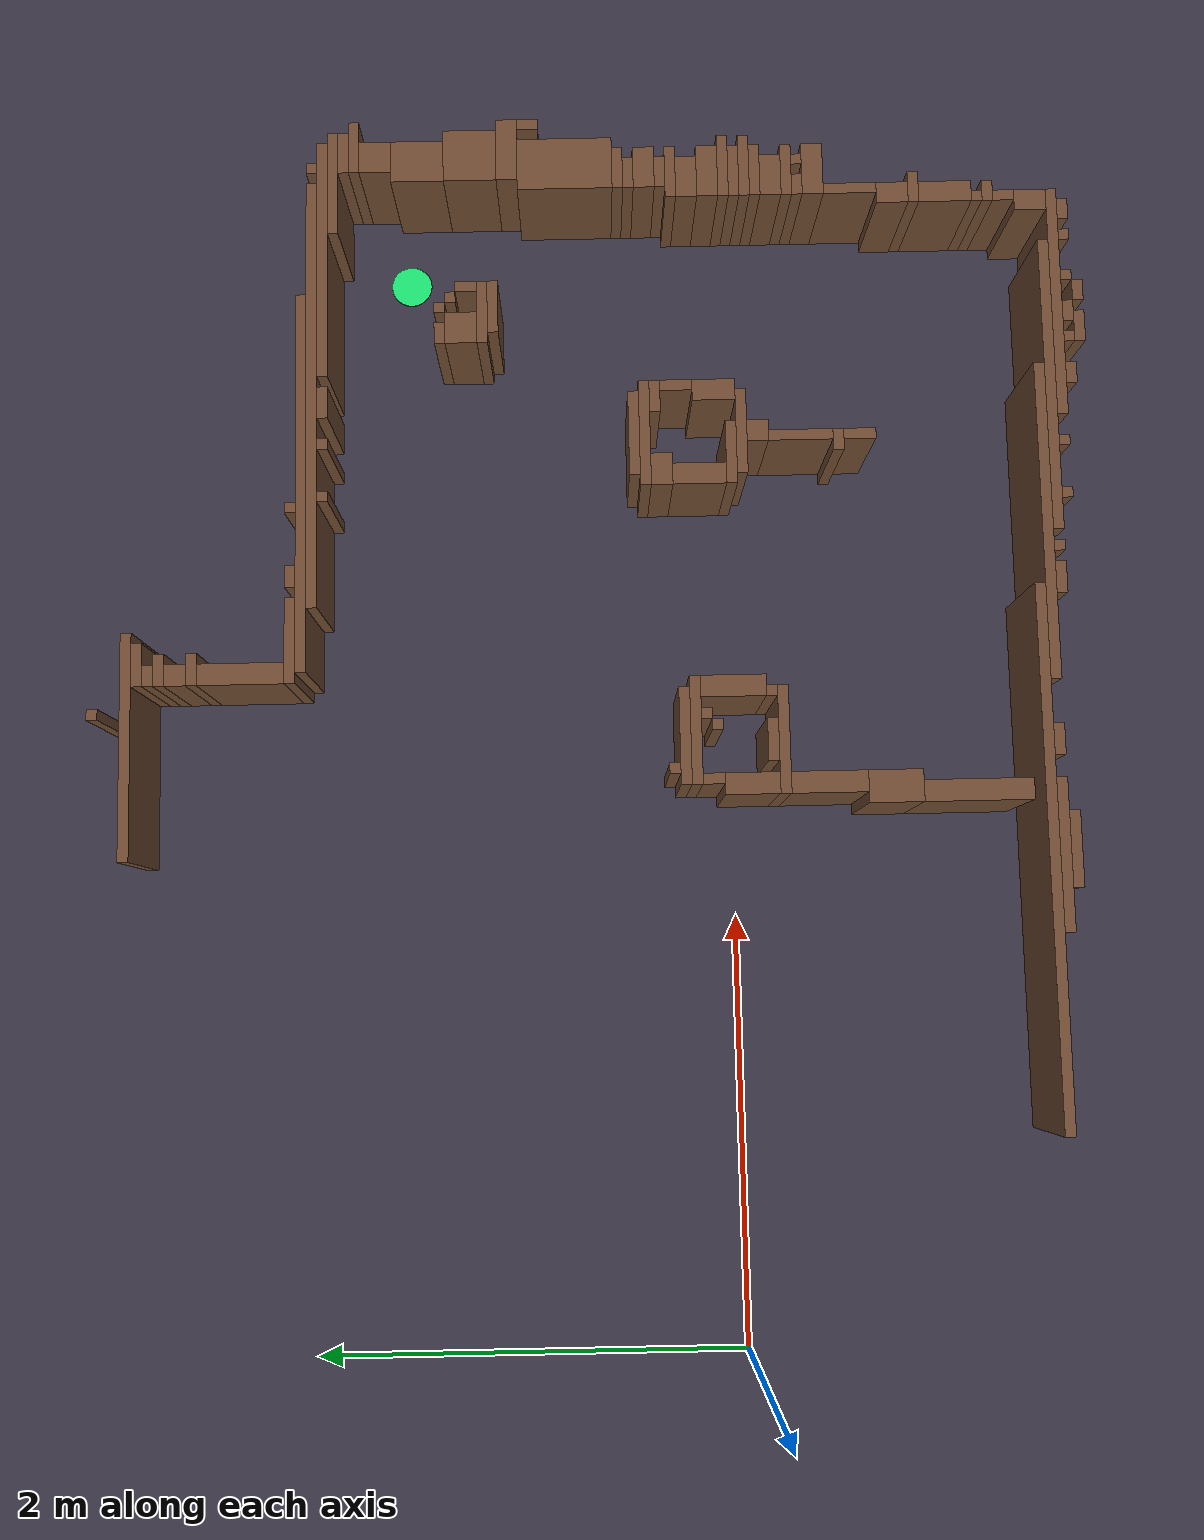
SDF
<sdf version="1.8">
 <world name="holloween">
  <model name="ground_plane">
   <static>true</static>
   <link name="link">
    <collision name="collision">
     <geometry><plane><normal>0 0 1</normal><size>100 100</size></plane></geometry>
    </collision>
    <visual name="visual">
     <geometry><plane><normal>0 0 1</normal><size>100 100</size></plane></geometry>
     <material><ambient>0.22 0.2 0.26 1</ambient><diffuse>0.22 0.2 0.26 1</diffuse></material>
    </visual>
   </link>
  </model>
  <model name="wall_5">
   <static>true</static>
   <pose>2.953 2.949 0.300 0 0 0</pose>
   <link name="l">
    <collision name="c"><geometry><box><size>0.050 0.050 0.600</size></box></geometry></collision>
    <visual name="v">
     <geometry><box><size>0.050 0.050 0.600</size></box></geometry>
     <material><ambient>0.45 0.3 0.2 1</ambient><diffuse>0.45 0.3 0.2 1</diffuse></material>
    </visual>
   </link>
  </model>
  <model name="wall_17">
   <static>true</static>
   <pose>2.803 2.799 0.300 0 0 0</pose>
   <link name="l">
    <collision name="c"><geometry><box><size>1.050 0.050 0.600</size></box></geometry></collision>
    <visual name="v">
     <geometry><box><size>1.050 0.050 0.600</size></box></geometry>
     <material><ambient>0.45 0.3 0.2 1</ambient><diffuse>0.45 0.3 0.2 1</diffuse></material>
    </visual>
   </link>
  </model>
  <model name="wall_18">
   <static>true</static>
   <pose>3.178 2.749 0.300 0 0 0</pose>
   <link name="l">
    <collision name="c"><geometry><box><size>0.200 0.050 0.600</size></box></geometry></collision>
    <visual name="v">
     <geometry><box><size>0.200 0.050 0.600</size></box></geometry>
     <material><ambient>0.45 0.3 0.2 1</ambient><diffuse>0.45 0.3 0.2 1</diffuse></material>
    </visual>
   </link>
  </model>
  <model name="wall_19">
   <static>true</static>
   <pose>3.128 2.699 0.300 0 0 0</pose>
   <link name="l">
    <collision name="c"><geometry><box><size>0.100 0.050 0.600</size></box></geometry></collision>
    <visual name="v">
     <geometry><box><size>0.100 0.050 0.600</size></box></geometry>
     <material><ambient>0.45 0.3 0.2 1</ambient><diffuse>0.45 0.3 0.2 1</diffuse></material>
    </visual>
   </link>
  </model>
  <model name="wall_20">
   <static>true</static>
   <pose>3.153 2.649 0.300 0 0 0</pose>
   <link name="l">
    <collision name="c"><geometry><box><size>0.150 0.050 0.600</size></box></geometry></collision>
    <visual name="v">
     <geometry><box><size>0.150 0.050 0.600</size></box></geometry>
     <material><ambient>0.45 0.3 0.2 1</ambient><diffuse>0.45 0.3 0.2 1</diffuse></material>
    </visual>
   </link>
  </model>
  <model name="wall_21">
   <static>true</static>
   <pose>3.128 2.574 0.300 0 0 0</pose>
   <link name="l">
    <collision name="c"><geometry><box><size>0.100 0.100 0.600</size></box></geometry></collision>
    <visual name="v">
     <geometry><box><size>0.100 0.100 0.600</size></box></geometry>
     <material><ambient>0.45 0.3 0.2 1</ambient><diffuse>0.45 0.3 0.2 1</diffuse></material>
    </visual>
   </link>
  </model>
  <model name="wall_22">
   <static>true</static>
   <pose>3.153 2.499 0.300 0 0 0</pose>
   <link name="l">
    <collision name="c"><geometry><box><size>0.150 0.050 0.600</size></box></geometry></collision>
    <visual name="v">
     <geometry><box><size>0.150 0.050 0.600</size></box></geometry>
     <material><ambient>0.45 0.3 0.2 1</ambient><diffuse>0.45 0.3 0.2 1</diffuse></material>
    </visual>
   </link>
  </model>
  <model name="wall_26">
   <static>true</static>
   <pose>3.128 2.274 0.300 0 0 0</pose>
   <link name="l">
    <collision name="c"><geometry><box><size>0.100 0.400 0.600</size></box></geometry></collision>
    <visual name="v">
     <geometry><box><size>0.100 0.400 0.600</size></box></geometry>
     <material><ambient>0.45 0.3 0.2 1</ambient><diffuse>0.45 0.3 0.2 1</diffuse></material>
    </visual>
   </link>
  </model>
  <model name="wall_28">
   <static>true</static>
   <pose>3.278 2.049 0.300 0 0 0</pose>
   <link name="l">
    <collision name="c"><geometry><box><size>0.400 0.050 0.600</size></box></geometry></collision>
    <visual name="v">
     <geometry><box><size>0.400 0.050 0.600</size></box></geometry>
     <material><ambient>0.45 0.3 0.2 1</ambient><diffuse>0.45 0.3 0.2 1</diffuse></material>
    </visual>
   </link>
  </model>
  <model name="wall_30">
   <static>true</static>
   <pose>3.578 2.049 0.300 0 0 0</pose>
   <link name="l">
    <collision name="c"><geometry><box><size>0.100 0.050 0.600</size></box></geometry></collision>
    <visual name="v">
     <geometry><box><size>0.100 0.050 0.600</size></box></geometry>
     <material><ambient>0.45 0.3 0.2 1</ambient><diffuse>0.45 0.3 0.2 1</diffuse></material>
    </visual>
   </link>
  </model>
  <model name="wall_31">
   <static>true</static>
   <pose>3.903 2.049 0.300 0 0 0</pose>
   <link name="l">
    <collision name="c"><geometry><box><size>0.050 0.050 0.600</size></box></geometry></collision>
    <visual name="v">
     <geometry><box><size>0.050 0.050 0.600</size></box></geometry>
     <material><ambient>0.45 0.3 0.2 1</ambient><diffuse>0.45 0.3 0.2 1</diffuse></material>
    </visual>
   </link>
  </model>
  <model name="wall_35">
   <static>true</static>
   <pose>4.028 1.999 0.300 0 0 0</pose>
   <link name="l">
    <collision name="c"><geometry><box><size>1.800 0.050 0.600</size></box></geometry></collision>
    <visual name="v">
     <geometry><box><size>1.800 0.050 0.600</size></box></geometry>
     <material><ambient>0.45 0.3 0.2 1</ambient><diffuse>0.45 0.3 0.2 1</diffuse></material>
    </visual>
   </link>
  </model>
  <model name="wall_37">
   <static>true</static>
   <pose>5.553 1.949 0.300 0 0 0</pose>
   <link name="l">
    <collision name="c"><geometry><box><size>0.050 0.050 0.600</size></box></geometry></collision>
    <visual name="v">
     <geometry><box><size>0.050 0.050 0.600</size></box></geometry>
     <material><ambient>0.45 0.3 0.2 1</ambient><diffuse>0.45 0.3 0.2 1</diffuse></material>
    </visual>
   </link>
  </model>
  <model name="wall_38">
   <static>true</static>
   <pose>4.453 1.949 0.300 0 0 0</pose>
   <link name="l">
    <collision name="c"><geometry><box><size>2.050 0.050 0.600</size></box></geometry></collision>
    <visual name="v">
     <geometry><box><size>2.050 0.050 0.600</size></box></geometry>
     <material><ambient>0.45 0.3 0.2 1</ambient><diffuse>0.45 0.3 0.2 1</diffuse></material>
    </visual>
   </link>
  </model>
  <model name="wall_39">
   <static>true</static>
   <pose>4.403 1.899 0.300 0 0 0</pose>
   <link name="l">
    <collision name="c"><geometry><box><size>0.150 0.050 0.600</size></box></geometry></collision>
    <visual name="v">
     <geometry><box><size>0.150 0.050 0.600</size></box></geometry>
     <material><ambient>0.45 0.3 0.2 1</ambient><diffuse>0.45 0.3 0.2 1</diffuse></material>
    </visual>
   </link>
  </model>
  <model name="wall_40">
   <static>true</static>
   <pose>3.953 1.899 0.300 0 0 0</pose>
   <link name="l">
    <collision name="c"><geometry><box><size>0.050 0.050 0.600</size></box></geometry></collision>
    <visual name="v">
     <geometry><box><size>0.050 0.050 0.600</size></box></geometry>
     <material><ambient>0.45 0.3 0.2 1</ambient><diffuse>0.45 0.3 0.2 1</diffuse></material>
    </visual>
   </link>
  </model>
  <model name="wall_42">
   <static>true</static>
   <pose>5.103 1.899 0.300 0 0 0</pose>
   <link name="l">
    <collision name="c"><geometry><box><size>1.150 0.050 0.600</size></box></geometry></collision>
    <visual name="v">
     <geometry><box><size>1.150 0.050 0.600</size></box></geometry>
     <material><ambient>0.45 0.3 0.2 1</ambient><diffuse>0.45 0.3 0.2 1</diffuse></material>
    </visual>
   </link>
  </model>
  <model name="wall_43">
   <static>true</static>
   <pose>4.203 1.899 0.300 0 0 0</pose>
   <link name="l">
    <collision name="c"><geometry><box><size>0.050 0.050 0.600</size></box></geometry></collision>
    <visual name="v">
     <geometry><box><size>0.050 0.050 0.600</size></box></geometry>
     <material><ambient>0.45 0.3 0.2 1</ambient><diffuse>0.45 0.3 0.2 1</diffuse></material>
    </visual>
   </link>
  </model>
  <model name="wall_47">
   <static>true</static>
   <pose>5.478 1.849 0.300 0 0 0</pose>
   <link name="l">
    <collision name="c"><geometry><box><size>0.500 0.050 0.600</size></box></geometry></collision>
    <visual name="v">
     <geometry><box><size>0.500 0.050 0.600</size></box></geometry>
     <material><ambient>0.45 0.3 0.2 1</ambient><diffuse>0.45 0.3 0.2 1</diffuse></material>
    </visual>
   </link>
  </model>
  <model name="wall_51">
   <static>true</static>
   <pose>5.628 1.799 0.300 0 0 0</pose>
   <link name="l">
    <collision name="c"><geometry><box><size>0.200 0.050 0.600</size></box></geometry></collision>
    <visual name="v">
     <geometry><box><size>0.200 0.050 0.600</size></box></geometry>
     <material><ambient>0.45 0.3 0.2 1</ambient><diffuse>0.45 0.3 0.2 1</diffuse></material>
    </visual>
   </link>
  </model>
  <model name="wall_53">
   <static>true</static>
   <pose>5.653 1.749 0.300 0 0 0</pose>
   <link name="l">
    <collision name="c"><geometry><box><size>0.250 0.050 0.600</size></box></geometry></collision>
    <visual name="v">
     <geometry><box><size>0.250 0.050 0.600</size></box></geometry>
     <material><ambient>0.45 0.3 0.2 1</ambient><diffuse>0.45 0.3 0.2 1</diffuse></material>
    </visual>
   </link>
  </model>
  <model name="wall_59">
   <static>true</static>
   <pose>5.603 1.649 0.300 0 0 0</pose>
   <link name="l">
    <collision name="c"><geometry><box><size>0.150 0.150 0.600</size></box></geometry></collision>
    <visual name="v">
     <geometry><box><size>0.150 0.150 0.600</size></box></geometry>
     <material><ambient>0.45 0.3 0.2 1</ambient><diffuse>0.45 0.3 0.2 1</diffuse></material>
    </visual>
   </link>
  </model>
  <model name="wall_64">
   <static>true</static>
   <pose>5.578 1.449 0.300 0 0 0</pose>
   <link name="l">
    <collision name="c"><geometry><box><size>0.200 0.250 0.600</size></box></geometry></collision>
    <visual name="v">
     <geometry><box><size>0.200 0.250 0.600</size></box></geometry>
     <material><ambient>0.45 0.3 0.2 1</ambient><diffuse>0.45 0.3 0.2 1</diffuse></material>
    </visual>
   </link>
  </model>
  <model name="wall_65">
   <static>true</static>
   <pose>4.853 1.349 0.300 0 0 0</pose>
   <link name="l">
    <collision name="c"><geometry><box><size>0.050 0.050 0.600</size></box></geometry></collision>
    <visual name="v">
     <geometry><box><size>0.050 0.050 0.600</size></box></geometry>
     <material><ambient>0.45 0.3 0.2 1</ambient><diffuse>0.45 0.3 0.2 1</diffuse></material>
    </visual>
   </link>
  </model>
  <model name="wall_66">
   <static>true</static>
   <pose>4.728 1.349 0.300 0 0 0</pose>
   <link name="l">
    <collision name="c"><geometry><box><size>0.100 0.050 0.600</size></box></geometry></collision>
    <visual name="v">
     <geometry><box><size>0.100 0.050 0.600</size></box></geometry>
     <material><ambient>0.45 0.3 0.2 1</ambient><diffuse>0.45 0.3 0.2 1</diffuse></material>
    </visual>
   </link>
  </model>
  <model name="wall_67">
   <static>true</static>
   <pose>4.903 1.299 0.300 0 0 0</pose>
   <link name="l">
    <collision name="c"><geometry><box><size>0.050 0.050 0.600</size></box></geometry></collision>
    <visual name="v">
     <geometry><box><size>0.050 0.050 0.600</size></box></geometry>
     <material><ambient>0.45 0.3 0.2 1</ambient><diffuse>0.45 0.3 0.2 1</diffuse></material>
    </visual>
   </link>
  </model>
  <model name="wall_70">
   <static>true</static>
   <pose>4.753 1.249 0.300 0 0 0</pose>
   <link name="l">
    <collision name="c"><geometry><box><size>0.150 0.150 0.600</size></box></geometry></collision>
    <visual name="v">
     <geometry><box><size>0.150 0.150 0.600</size></box></geometry>
     <material><ambient>0.45 0.3 0.2 1</ambient><diffuse>0.45 0.3 0.2 1</diffuse></material>
    </visual>
   </link>
  </model>
  <model name="wall_71">
   <static>true</static>
   <pose>4.953 1.224 0.300 0 0 0</pose>
   <link name="l">
    <collision name="c"><geometry><box><size>0.050 0.100 0.600</size></box></geometry></collision>
    <visual name="v">
     <geometry><box><size>0.050 0.100 0.600</size></box></geometry>
     <material><ambient>0.45 0.3 0.2 1</ambient><diffuse>0.45 0.3 0.2 1</diffuse></material>
    </visual>
   </link>
  </model>
  <model name="wall_72">
   <static>true</static>
   <pose>4.828 1.149 0.300 0 0 0</pose>
   <link name="l">
    <collision name="c"><geometry><box><size>0.300 0.050 0.600</size></box></geometry></collision>
    <visual name="v">
     <geometry><box><size>0.300 0.050 0.600</size></box></geometry>
     <material><ambient>0.45 0.3 0.2 1</ambient><diffuse>0.45 0.3 0.2 1</diffuse></material>
    </visual>
   </link>
  </model>
  <model name="wall_74">
   <static>true</static>
   <pose>5.603 1.199 0.300 0 0 0</pose>
   <link name="l">
    <collision name="c"><geometry><box><size>0.250 0.250 0.600</size></box></geometry></collision>
    <visual name="v">
     <geometry><box><size>0.250 0.250 0.600</size></box></geometry>
     <material><ambient>0.45 0.3 0.2 1</ambient><diffuse>0.45 0.3 0.2 1</diffuse></material>
    </visual>
   </link>
  </model>
  <model name="wall_75">
   <static>true</static>
   <pose>4.853 1.099 0.300 0 0 0</pose>
   <link name="l">
    <collision name="c"><geometry><box><size>0.250 0.050 0.600</size></box></geometry></collision>
    <visual name="v">
     <geometry><box><size>0.250 0.050 0.600</size></box></geometry>
     <material><ambient>0.45 0.3 0.2 1</ambient><diffuse>0.45 0.3 0.2 1</diffuse></material>
    </visual>
   </link>
  </model>
  <model name="wall_76">
   <static>true</static>
   <pose>5.628 1.024 0.300 0 0 0</pose>
   <link name="l">
    <collision name="c"><geometry><box><size>0.300 0.100 0.600</size></box></geometry></collision>
    <visual name="v">
     <geometry><box><size>0.300 0.100 0.600</size></box></geometry>
     <material><ambient>0.45 0.3 0.2 1</ambient><diffuse>0.45 0.3 0.2 1</diffuse></material>
    </visual>
   </link>
  </model>
  <model name="wall_77">
   <static>true</static>
   <pose>5.753 0.924 0.300 0 0 0</pose>
   <link name="l">
    <collision name="c"><geometry><box><size>0.050 0.100 0.600</size></box></geometry></collision>
    <visual name="v">
     <geometry><box><size>0.050 0.100 0.600</size></box></geometry>
     <material><ambient>0.45 0.3 0.2 1</ambient><diffuse>0.45 0.3 0.2 1</diffuse></material>
    </visual>
   </link>
  </model>
  <model name="wall_84">
   <static>true</static>
   <pose>5.553 0.749 0.300 0 0 0</pose>
   <link name="l">
    <collision name="c"><geometry><box><size>0.250 0.450 0.600</size></box></geometry></collision>
    <visual name="v">
     <geometry><box><size>0.250 0.450 0.600</size></box></geometry>
     <material><ambient>0.45 0.3 0.2 1</ambient><diffuse>0.45 0.3 0.2 1</diffuse></material>
    </visual>
   </link>
  </model>
  <model name="wall_88">
   <static>true</static>
   <pose>5.528 0.499 0.300 0 0 0</pose>
   <link name="l">
    <collision name="c"><geometry><box><size>0.200 0.050 0.600</size></box></geometry></collision>
    <visual name="v">
     <geometry><box><size>0.200 0.050 0.600</size></box></geometry>
     <material><ambient>0.45 0.3 0.2 1</ambient><diffuse>0.45 0.3 0.2 1</diffuse></material>
    </visual>
   </link>
  </model>
  <model name="wall_93">
   <static>true</static>
   <pose>4.228 0.449 0.300 0 0 0</pose>
   <link name="l">
    <collision name="c"><geometry><box><size>0.400 0.050 0.600</size></box></geometry></collision>
    <visual name="v">
     <geometry><box><size>0.400 0.050 0.600</size></box></geometry>
     <material><ambient>0.45 0.3 0.2 1</ambient><diffuse>0.45 0.3 0.2 1</diffuse></material>
    </visual>
   </link>
  </model>
  <model name="wall_94">
   <static>true</static>
   <pose>5.503 0.449 0.300 0 0 0</pose>
   <link name="l">
    <collision name="c"><geometry><box><size>0.150 0.050 0.600</size></box></geometry></collision>
    <visual name="v">
     <geometry><box><size>0.150 0.050 0.600</size></box></geometry>
     <material><ambient>0.45 0.3 0.2 1</ambient><diffuse>0.45 0.3 0.2 1</diffuse></material>
    </visual>
   </link>
  </model>
  <model name="wall_98">
   <static>true</static>
   <pose>4.228 0.399 0.300 0 0 0</pose>
   <link name="l">
    <collision name="c"><geometry><box><size>0.500 0.050 0.600</size></box></geometry></collision>
    <visual name="v">
     <geometry><box><size>0.500 0.050 0.600</size></box></geometry>
     <material><ambient>0.45 0.3 0.2 1</ambient><diffuse>0.45 0.3 0.2 1</diffuse></material>
    </visual>
   </link>
  </model>
  <model name="wall_99">
   <static>true</static>
   <pose>5.528 0.374 0.300 0 0 0</pose>
   <link name="l">
    <collision name="c"><geometry><box><size>0.200 0.100 0.600</size></box></geometry></collision>
    <visual name="v">
     <geometry><box><size>0.200 0.100 0.600</size></box></geometry>
     <material><ambient>0.45 0.3 0.2 1</ambient><diffuse>0.45 0.3 0.2 1</diffuse></material>
    </visual>
   </link>
  </model>
  <model name="wall_101">
   <static>true</static>
   <pose>4.403 0.349 0.300 0 0 0</pose>
   <link name="l">
    <collision name="c"><geometry><box><size>0.150 0.050 0.600</size></box></geometry></collision>
    <visual name="v">
     <geometry><box><size>0.150 0.050 0.600</size></box></geometry>
     <material><ambient>0.45 0.3 0.2 1</ambient><diffuse>0.45 0.3 0.2 1</diffuse></material>
    </visual>
   </link>
  </model>
  <model name="wall_103">
   <static>true</static>
   <pose>4.053 0.324 0.300 0 0 0</pose>
   <link name="l">
    <collision name="c"><geometry><box><size>0.150 0.100 0.600</size></box></geometry></collision>
    <visual name="v">
     <geometry><box><size>0.150 0.100 0.600</size></box></geometry>
     <material><ambient>0.45 0.3 0.2 1</ambient><diffuse>0.45 0.3 0.2 1</diffuse></material>
    </visual>
   </link>
  </model>
  <model name="wall_104">
   <static>true</static>
   <pose>2.653 0.299 0.300 0 0 0</pose>
   <link name="l">
    <collision name="c"><geometry><box><size>0.050 0.050 0.600</size></box></geometry></collision>
    <visual name="v">
     <geometry><box><size>0.050 0.050 0.600</size></box></geometry>
     <material><ambient>0.45 0.3 0.2 1</ambient><diffuse>0.45 0.3 0.2 1</diffuse></material>
    </visual>
   </link>
  </model>
  <model name="wall_106">
   <static>true</static>
   <pose>5.503 0.299 0.300 0 0 0</pose>
   <link name="l">
    <collision name="c"><geometry><box><size>0.150 0.050 0.600</size></box></geometry></collision>
    <visual name="v">
     <geometry><box><size>0.150 0.050 0.600</size></box></geometry>
     <material><ambient>0.45 0.3 0.2 1</ambient><diffuse>0.45 0.3 0.2 1</diffuse></material>
    </visual>
   </link>
  </model>
  <model name="wall_108">
   <static>true</static>
   <pose>5.503 0.249 0.300 0 0 0</pose>
   <link name="l">
    <collision name="c"><geometry><box><size>0.250 0.050 0.600</size></box></geometry></collision>
    <visual name="v">
     <geometry><box><size>0.250 0.050 0.600</size></box></geometry>
     <material><ambient>0.45 0.3 0.2 1</ambient><diffuse>0.45 0.3 0.2 1</diffuse></material>
    </visual>
   </link>
  </model>
  <model name="wall_109">
   <static>true</static>
   <pose>2.803 0.249 0.300 0 0 0</pose>
   <link name="l">
    <collision name="c"><geometry><box><size>0.450 0.050 0.600</size></box></geometry></collision>
    <visual name="v">
     <geometry><box><size>0.450 0.050 0.600</size></box></geometry>
     <material><ambient>0.45 0.3 0.2 1</ambient><diffuse>0.45 0.3 0.2 1</diffuse></material>
    </visual>
   </link>
  </model>
  <model name="wall_110">
   <static>true</static>
   <pose>4.453 0.249 0.300 0 0 0</pose>
   <link name="l">
    <collision name="c"><geometry><box><size>0.050 0.150 0.600</size></box></geometry></collision>
    <visual name="v">
     <geometry><box><size>0.050 0.150 0.600</size></box></geometry>
     <material><ambient>0.45 0.3 0.2 1</ambient><diffuse>0.45 0.3 0.2 1</diffuse></material>
    </visual>
   </link>
  </model>
  <model name="wall_111">
   <static>true</static>
   <pose>2.828 0.199 0.300 0 0 0</pose>
   <link name="l">
    <collision name="c"><geometry><box><size>0.500 0.050 0.600</size></box></geometry></collision>
    <visual name="v">
     <geometry><box><size>0.500 0.050 0.600</size></box></geometry>
     <material><ambient>0.45 0.3 0.2 1</ambient><diffuse>0.45 0.3 0.2 1</diffuse></material>
    </visual>
   </link>
  </model>
  <model name="wall_113">
   <static>true</static>
   <pose>5.478 0.174 0.300 0 0 0</pose>
   <link name="l">
    <collision name="c"><geometry><box><size>0.200 0.100 0.600</size></box></geometry></collision>
    <visual name="v">
     <geometry><box><size>0.200 0.100 0.600</size></box></geometry>
     <material><ambient>0.45 0.3 0.2 1</ambient><diffuse>0.45 0.3 0.2 1</diffuse></material>
    </visual>
   </link>
  </model>
  <model name="wall_114">
   <static>true</static>
   <pose>2.903 0.149 0.300 0 0 0</pose>
   <link name="l">
    <collision name="c"><geometry><box><size>0.050 0.050 0.600</size></box></geometry></collision>
    <visual name="v">
     <geometry><box><size>0.050 0.050 0.600</size></box></geometry>
     <material><ambient>0.45 0.3 0.2 1</ambient><diffuse>0.45 0.3 0.2 1</diffuse></material>
    </visual>
   </link>
  </model>
  <model name="wall_115">
   <static>true</static>
   <pose>2.603 0.124 0.300 0 0 0</pose>
   <link name="l">
    <collision name="c"><geometry><box><size>0.050 0.100 0.600</size></box></geometry></collision>
    <visual name="v">
     <geometry><box><size>0.050 0.100 0.600</size></box></geometry>
     <material><ambient>0.45 0.3 0.2 1</ambient><diffuse>0.45 0.3 0.2 1</diffuse></material>
    </visual>
   </link>
  </model>
  <model name="wall_116">
   <static>true</static>
   <pose>2.853 0.099 0.300 0 0 0</pose>
   <link name="l">
    <collision name="c"><geometry><box><size>0.050 0.050 0.600</size></box></geometry></collision>
    <visual name="v">
     <geometry><box><size>0.050 0.050 0.600</size></box></geometry>
     <material><ambient>0.45 0.3 0.2 1</ambient><diffuse>0.45 0.3 0.2 1</diffuse></material>
    </visual>
   </link>
  </model>
  <model name="wall_119">
   <static>true</static>
   <pose>4.028 0.149 0.300 0 0 0</pose>
   <link name="l">
    <collision name="c"><geometry><box><size>0.100 0.250 0.600</size></box></geometry></collision>
    <visual name="v">
     <geometry><box><size>0.100 0.250 0.600</size></box></geometry>
     <material><ambient>0.45 0.3 0.2 1</ambient><diffuse>0.45 0.3 0.2 1</diffuse></material>
    </visual>
   </link>
  </model>
  <model name="wall_120">
   <static>true</static>
   <pose>5.503 0.074 0.300 0 0 0</pose>
   <link name="l">
    <collision name="c"><geometry><box><size>0.250 0.100 0.600</size></box></geometry></collision>
    <visual name="v">
     <geometry><box><size>0.250 0.100 0.600</size></box></geometry>
     <material><ambient>0.45 0.3 0.2 1</ambient><diffuse>0.45 0.3 0.2 1</diffuse></material>
    </visual>
   </link>
  </model>
  <model name="wall_122">
   <static>true</static>
   <pose>4.428 0.074 0.300 0 0 0</pose>
   <link name="l">
    <collision name="c"><geometry><box><size>0.100 0.200 0.600</size></box></geometry></collision>
    <visual name="v">
     <geometry><box><size>0.100 0.200 0.600</size></box></geometry>
     <material><ambient>0.45 0.3 0.2 1</ambient><diffuse>0.45 0.3 0.2 1</diffuse></material>
    </visual>
   </link>
  </model>
  <model name="wall_123">
   <static>true</static>
   <pose>5.528 -0.001 0.300 0 0 0</pose>
   <link name="l">
    <collision name="c"><geometry><box><size>0.300 0.050 0.600</size></box></geometry></collision>
    <visual name="v">
     <geometry><box><size>0.300 0.050 0.600</size></box></geometry>
     <material><ambient>0.45 0.3 0.2 1</ambient><diffuse>0.45 0.3 0.2 1</diffuse></material>
    </visual>
   </link>
  </model>
  <model name="wall_124">
   <static>true</static>
   <pose>4.128 -0.001 0.300 0 0 0</pose>
   <link name="l">
    <collision name="c"><geometry><box><size>0.300 0.050 0.600</size></box></geometry></collision>
    <visual name="v">
     <geometry><box><size>0.300 0.050 0.600</size></box></geometry>
     <material><ambient>0.45 0.3 0.2 1</ambient><diffuse>0.45 0.3 0.2 1</diffuse></material>
    </visual>
   </link>
  </model>
  <model name="wall_125">
   <static>true</static>
   <pose>5.503 -0.051 0.300 0 0 0</pose>
   <link name="l">
    <collision name="c"><geometry><box><size>0.250 0.050 0.600</size></box></geometry></collision>
    <visual name="v">
     <geometry><box><size>0.250 0.050 0.600</size></box></geometry>
     <material><ambient>0.45 0.3 0.2 1</ambient><diffuse>0.45 0.3 0.2 1</diffuse></material>
    </visual>
   </link>
  </model>
  <model name="wall_126">
   <static>true</static>
   <pose>4.228 -0.051 0.300 0 0 0</pose>
   <link name="l">
    <collision name="c"><geometry><box><size>0.400 0.050 0.600</size></box></geometry></collision>
    <visual name="v">
     <geometry><box><size>0.400 0.050 0.600</size></box></geometry>
     <material><ambient>0.45 0.3 0.2 1</ambient><diffuse>0.45 0.3 0.2 1</diffuse></material>
    </visual>
   </link>
  </model>
  <model name="wall_127">
   <static>true</static>
   <pose>3.028 0.024 0.300 0 0 0</pose>
   <link name="l">
    <collision name="c"><geometry><box><size>0.100 0.300 0.600</size></box></geometry></collision>
    <visual name="v">
     <geometry><box><size>0.100 0.300 0.600</size></box></geometry>
     <material><ambient>0.45 0.3 0.2 1</ambient><diffuse>0.45 0.3 0.2 1</diffuse></material>
    </visual>
   </link>
  </model>
  <model name="wall_128">
   <static>true</static>
   <pose>5.528 -0.101 0.300 0 0 0</pose>
   <link name="l">
    <collision name="c"><geometry><box><size>0.300 0.050 0.600</size></box></geometry></collision>
    <visual name="v">
     <geometry><box><size>0.300 0.050 0.600</size></box></geometry>
     <material><ambient>0.45 0.3 0.2 1</ambient><diffuse>0.45 0.3 0.2 1</diffuse></material>
    </visual>
   </link>
  </model>
  <model name="wall_129">
   <static>true</static>
   <pose>2.578 -0.051 0.300 0 0 0</pose>
   <link name="l">
    <collision name="c"><geometry><box><size>0.100 0.250 0.600</size></box></geometry></collision>
    <visual name="v">
     <geometry><box><size>0.100 0.250 0.600</size></box></geometry>
     <material><ambient>0.45 0.3 0.2 1</ambient><diffuse>0.45 0.3 0.2 1</diffuse></material>
    </visual>
   </link>
  </model>
  <model name="wall_131">
   <static>true</static>
   <pose>4.228 -0.126 0.300 0 0 0</pose>
   <link name="l">
    <collision name="c"><geometry><box><size>0.100 0.100 0.600</size></box></geometry></collision>
    <visual name="v">
     <geometry><box><size>0.100 0.100 0.600</size></box></geometry>
     <material><ambient>0.45 0.3 0.2 1</ambient><diffuse>0.45 0.3 0.2 1</diffuse></material>
    </visual>
   </link>
  </model>
  <model name="wall_132">
   <static>true</static>
   <pose>5.503 -0.151 0.300 0 0 0</pose>
   <link name="l">
    <collision name="c"><geometry><box><size>0.250 0.050 0.600</size></box></geometry></collision>
    <visual name="v">
     <geometry><box><size>0.250 0.050 0.600</size></box></geometry>
     <material><ambient>0.45 0.3 0.2 1</ambient><diffuse>0.45 0.3 0.2 1</diffuse></material>
    </visual>
   </link>
  </model>
  <model name="wall_133">
   <static>true</static>
   <pose>2.778 -0.151 0.300 0 0 0</pose>
   <link name="l">
    <collision name="c"><geometry><box><size>0.200 0.050 0.600</size></box></geometry></collision>
    <visual name="v">
     <geometry><box><size>0.200 0.050 0.600</size></box></geometry>
     <material><ambient>0.45 0.3 0.2 1</ambient><diffuse>0.45 0.3 0.2 1</diffuse></material>
    </visual>
   </link>
  </model>
  <model name="wall_134">
   <static>true</static>
   <pose>3.003 -0.151 0.300 0 0 0</pose>
   <link name="l">
    <collision name="c"><geometry><box><size>0.050 0.050 0.600</size></box></geometry></collision>
    <visual name="v">
     <geometry><box><size>0.050 0.050 0.600</size></box></geometry>
     <material><ambient>0.45 0.3 0.2 1</ambient><diffuse>0.45 0.3 0.2 1</diffuse></material>
    </visual>
   </link>
  </model>
  <model name="wall_135">
   <static>true</static>
   <pose>2.778 -0.201 0.300 0 0 0</pose>
   <link name="l">
    <collision name="c"><geometry><box><size>0.500 0.050 0.600</size></box></geometry></collision>
    <visual name="v">
     <geometry><box><size>0.500 0.050 0.600</size></box></geometry>
     <material><ambient>0.45 0.3 0.2 1</ambient><diffuse>0.45 0.3 0.2 1</diffuse></material>
    </visual>
   </link>
  </model>
  <model name="wall_136">
   <static>true</static>
   <pose>5.478 -0.226 0.300 0 0 0</pose>
   <link name="l">
    <collision name="c"><geometry><box><size>0.200 0.100 0.600</size></box></geometry></collision>
    <visual name="v">
     <geometry><box><size>0.200 0.100 0.600</size></box></geometry>
     <material><ambient>0.45 0.3 0.2 1</ambient><diffuse>0.45 0.3 0.2 1</diffuse></material>
    </visual>
   </link>
  </model>
  <model name="wall_138">
   <static>true</static>
   <pose>5.503 -0.301 0.300 0 0 0</pose>
   <link name="l">
    <collision name="c"><geometry><box><size>0.250 0.050 0.600</size></box></geometry></collision>
    <visual name="v">
     <geometry><box><size>0.250 0.050 0.600</size></box></geometry>
     <material><ambient>0.45 0.3 0.2 1</ambient><diffuse>0.45 0.3 0.2 1</diffuse></material>
    </visual>
   </link>
  </model>
  <model name="wall_139">
   <static>true</static>
   <pose>5.428 -0.351 0.300 0 0 0</pose>
   <link name="l">
    <collision name="c"><geometry><box><size>0.100 0.050 0.600</size></box></geometry></collision>
    <visual name="v">
     <geometry><box><size>0.100 0.050 0.600</size></box></geometry>
     <material><ambient>0.45 0.3 0.2 1</ambient><diffuse>0.45 0.3 0.2 1</diffuse></material>
    </visual>
   </link>
  </model>
  <model name="wall_140">
   <static>true</static>
   <pose>5.553 -0.351 0.300 0 0 0</pose>
   <link name="l">
    <collision name="c"><geometry><box><size>0.050 0.050 0.600</size></box></geometry></collision>
    <visual name="v">
     <geometry><box><size>0.050 0.050 0.600</size></box></geometry>
     <material><ambient>0.45 0.3 0.2 1</ambient><diffuse>0.45 0.3 0.2 1</diffuse></material>
    </visual>
   </link>
  </model>
  <model name="wall_144">
   <static>true</static>
   <pose>4.203 -0.326 0.300 0 0 0</pose>
   <link name="l">
    <collision name="c"><geometry><box><size>0.050 0.300 0.600</size></box></geometry></collision>
    <visual name="v">
     <geometry><box><size>0.050 0.300 0.600</size></box></geometry>
     <material><ambient>0.45 0.3 0.2 1</ambient><diffuse>0.45 0.3 0.2 1</diffuse></material>
    </visual>
   </link>
  </model>
  <model name="wall_145">
   <static>true</static>
   <pose>5.503 -0.426 0.300 0 0 0</pose>
   <link name="l">
    <collision name="c"><geometry><box><size>0.250 0.100 0.600</size></box></geometry></collision>
    <visual name="v">
     <geometry><box><size>0.250 0.100 0.600</size></box></geometry>
     <material><ambient>0.45 0.3 0.2 1</ambient><diffuse>0.45 0.3 0.2 1</diffuse></material>
    </visual>
   </link>
  </model>
  <model name="wall_148">
   <static>true</static>
   <pose>4.178 -0.501 0.300 0 0 0</pose>
   <link name="l">
    <collision name="c"><geometry><box><size>0.100 0.050 0.600</size></box></geometry></collision>
    <visual name="v">
     <geometry><box><size>0.100 0.050 0.600</size></box></geometry>
     <material><ambient>0.45 0.3 0.2 1</ambient><diffuse>0.45 0.3 0.2 1</diffuse></material>
    </visual>
   </link>
  </model>
  <model name="wall_149">
   <static>true</static>
   <pose>2.578 -0.401 0.300 0 0 0</pose>
   <link name="l">
    <collision name="c"><geometry><box><size>0.100 0.350 0.600</size></box></geometry></collision>
    <visual name="v">
     <geometry><box><size>0.100 0.350 0.600</size></box></geometry>
     <material><ambient>0.45 0.3 0.2 1</ambient><diffuse>0.45 0.3 0.2 1</diffuse></material>
    </visual>
   </link>
  </model>
  <model name="wall_153">
   <static>true</static>
   <pose>4.203 -0.601 0.300 0 0 0</pose>
   <link name="l">
    <collision name="c"><geometry><box><size>0.050 0.150 0.600</size></box></geometry></collision>
    <visual name="v">
     <geometry><box><size>0.050 0.150 0.600</size></box></geometry>
     <material><ambient>0.45 0.3 0.2 1</ambient><diffuse>0.45 0.3 0.2 1</diffuse></material>
    </visual>
   </link>
  </model>
  <model name="wall_155">
   <static>true</static>
   <pose>5.403 -0.601 0.300 0 0 0</pose>
   <link name="l">
    <collision name="c"><geometry><box><size>0.050 0.250 0.600</size></box></geometry></collision>
    <visual name="v">
     <geometry><box><size>0.050 0.250 0.600</size></box></geometry>
     <material><ambient>0.45 0.3 0.2 1</ambient><diffuse>0.45 0.3 0.2 1</diffuse></material>
    </visual>
   </link>
  </model>
  <model name="wall_158">
   <static>true</static>
   <pose>2.553 -0.701 0.300 0 0 0</pose>
   <link name="l">
    <collision name="c"><geometry><box><size>0.150 0.250 0.600</size></box></geometry></collision>
    <visual name="v">
     <geometry><box><size>0.150 0.250 0.600</size></box></geometry>
     <material><ambient>0.45 0.3 0.2 1</ambient><diffuse>0.45 0.3 0.2 1</diffuse></material>
    </visual>
   </link>
  </model>
  <model name="wall_159">
   <static>true</static>
   <pose>5.378 -0.801 0.300 0 0 0</pose>
   <link name="l">
    <collision name="c"><geometry><box><size>0.100 0.150 0.600</size></box></geometry></collision>
    <visual name="v">
     <geometry><box><size>0.100 0.150 0.600</size></box></geometry>
     <material><ambient>0.45 0.3 0.2 1</ambient><diffuse>0.45 0.3 0.2 1</diffuse></material>
    </visual>
   </link>
  </model>
  <model name="wall_162">
   <static>true</static>
   <pose>5.403 -0.901 0.300 0 0 0</pose>
   <link name="l">
    <collision name="c"><geometry><box><size>0.150 0.050 0.600</size></box></geometry></collision>
    <visual name="v">
     <geometry><box><size>0.150 0.050 0.600</size></box></geometry>
     <material><ambient>0.45 0.3 0.2 1</ambient><diffuse>0.45 0.3 0.2 1</diffuse></material>
    </visual>
   </link>
  </model>
  <model name="wall_167">
   <static>true</static>
   <pose>5.378 -1.051 0.300 0 0 0</pose>
   <link name="l">
    <collision name="c"><geometry><box><size>0.100 0.250 0.600</size></box></geometry></collision>
    <visual name="v">
     <geometry><box><size>0.100 0.250 0.600</size></box></geometry>
     <material><ambient>0.45 0.3 0.2 1</ambient><diffuse>0.45 0.3 0.2 1</diffuse></material>
    </visual>
   </link>
  </model>
  <model name="wall_169">
   <static>true</static>
   <pose>5.353 -1.201 0.300 0 0 0</pose>
   <link name="l">
    <collision name="c"><geometry><box><size>0.050 0.050 0.600</size></box></geometry></collision>
    <visual name="v">
     <geometry><box><size>0.050 0.050 0.600</size></box></geometry>
     <material><ambient>0.45 0.3 0.2 1</ambient><diffuse>0.45 0.3 0.2 1</diffuse></material>
    </visual>
   </link>
  </model>
  <model name="wall_170">
   <static>true</static>
   <pose>5.378 -1.251 0.300 0 0 0</pose>
   <link name="l">
    <collision name="c"><geometry><box><size>0.100 0.050 0.600</size></box></geometry></collision>
    <visual name="v">
     <geometry><box><size>0.100 0.050 0.600</size></box></geometry>
     <material><ambient>0.45 0.3 0.2 1</ambient><diffuse>0.45 0.3 0.2 1</diffuse></material>
    </visual>
   </link>
  </model>
  <model name="wall_175">
   <static>true</static>
   <pose>2.528 -1.076 0.300 0 0 0</pose>
   <link name="l">
    <collision name="c"><geometry><box><size>0.100 0.500 0.600</size></box></geometry></collision>
    <visual name="v">
     <geometry><box><size>0.100 0.500 0.600</size></box></geometry>
     <material><ambient>0.45 0.3 0.2 1</ambient><diffuse>0.45 0.3 0.2 1</diffuse></material>
    </visual>
   </link>
  </model>
  <model name="wall_177">
   <static>true</static>
   <pose>5.353 -1.326 0.300 0 0 0</pose>
   <link name="l">
    <collision name="c"><geometry><box><size>0.050 0.100 0.600</size></box></geometry></collision>
    <visual name="v">
     <geometry><box><size>0.050 0.100 0.600</size></box></geometry>
     <material><ambient>0.45 0.3 0.2 1</ambient><diffuse>0.45 0.3 0.2 1</diffuse></material>
    </visual>
   </link>
  </model>
  <model name="wall_184">
   <static>true</static>
   <pose>2.228 -1.401 0.300 0 0 0</pose>
   <link name="l">
    <collision name="c"><geometry><box><size>2.500 0.050 0.600</size></box></geometry></collision>
    <visual name="v">
     <geometry><box><size>2.500 0.050 0.600</size></box></geometry>
     <material><ambient>0.45 0.3 0.2 1</ambient><diffuse>0.45 0.3 0.2 1</diffuse></material>
    </visual>
   </link>
  </model>
  <model name="wall_186">
   <static>true</static>
   <pose>3.778 -1.451 0.300 0 0 0</pose>
   <link name="l">
    <collision name="c"><geometry><box><size>1.500 0.050 0.600</size></box></geometry></collision>
    <visual name="v">
     <geometry><box><size>1.500 0.050 0.600</size></box></geometry>
     <material><ambient>0.45 0.3 0.2 1</ambient><diffuse>0.45 0.3 0.2 1</diffuse></material>
    </visual>
   </link>
  </model>
  <model name="wall_187">
   <static>true</static>
   <pose>2.228 -1.451 0.300 0 0 0</pose>
   <link name="l">
    <collision name="c"><geometry><box><size>0.700 0.050 0.600</size></box></geometry></collision>
    <visual name="v">
     <geometry><box><size>0.700 0.050 0.600</size></box></geometry>
     <material><ambient>0.45 0.3 0.2 1</ambient><diffuse>0.45 0.3 0.2 1</diffuse></material>
    </visual>
   </link>
  </model>
  <model name="wall_188">
   <static>true</static>
   <pose>2.753 -1.451 0.300 0 0 0</pose>
   <link name="l">
    <collision name="c"><geometry><box><size>0.150 0.050 0.600</size></box></geometry></collision>
    <visual name="v">
     <geometry><box><size>0.150 0.050 0.600</size></box></geometry>
     <material><ambient>0.45 0.3 0.2 1</ambient><diffuse>0.45 0.3 0.2 1</diffuse></material>
    </visual>
   </link>
  </model>
  <model name="wall_189">
   <static>true</static>
   <pose>5.328 -1.451 0.300 0 0 0</pose>
   <link name="l">
    <collision name="c"><geometry><box><size>0.100 0.150 0.600</size></box></geometry></collision>
    <visual name="v">
     <geometry><box><size>0.100 0.150 0.600</size></box></geometry>
     <material><ambient>0.45 0.3 0.2 1</ambient><diffuse>0.45 0.3 0.2 1</diffuse></material>
    </visual>
   </link>
  </model>
  <model name="wall_190">
   <static>true</static>
   <pose>4.428 -1.501 0.300 0 0 0</pose>
   <link name="l">
    <collision name="c"><geometry><box><size>1.400 0.050 0.600</size></box></geometry></collision>
    <visual name="v">
     <geometry><box><size>1.400 0.050 0.600</size></box></geometry>
     <material><ambient>0.45 0.3 0.2 1</ambient><diffuse>0.45 0.3 0.2 1</diffuse></material>
    </visual>
   </link>
  </model>
  <model name="wall_191">
   <static>true</static>
   <pose>3.653 -1.501 0.300 0 0 0</pose>
   <link name="l">
    <collision name="c"><geometry><box><size>0.050 0.050 0.600</size></box></geometry></collision>
    <visual name="v">
     <geometry><box><size>0.050 0.050 0.600</size></box></geometry>
     <material><ambient>0.45 0.3 0.2 1</ambient><diffuse>0.45 0.3 0.2 1</diffuse></material>
    </visual>
   </link>
  </model>
  <model name="wall_192">
   <static>true</static>
   <pose>2.253 -1.501 0.300 0 0 0</pose>
   <link name="l">
    <collision name="c"><geometry><box><size>0.350 0.050 0.600</size></box></geometry></collision>
    <visual name="v">
     <geometry><box><size>0.350 0.050 0.600</size></box></geometry>
     <material><ambient>0.45 0.3 0.2 1</ambient><diffuse>0.45 0.3 0.2 1</diffuse></material>
    </visual>
   </link>
  </model>
  <model name="wall_194">
   <static>true</static>
   <pose>3.503 -1.501 0.300 0 0 0</pose>
   <link name="l">
    <collision name="c"><geometry><box><size>0.150 0.050 0.600</size></box></geometry></collision>
    <visual name="v">
     <geometry><box><size>0.150 0.050 0.600</size></box></geometry>
     <material><ambient>0.45 0.3 0.2 1</ambient><diffuse>0.45 0.3 0.2 1</diffuse></material>
    </visual>
   </link>
  </model>
  <model name="wall_195">
   <static>true</static>
   <pose>4.153 -1.551 0.300 0 0 0</pose>
   <link name="l">
    <collision name="c"><geometry><box><size>0.050 0.050 0.600</size></box></geometry></collision>
    <visual name="v">
     <geometry><box><size>0.050 0.050 0.600</size></box></geometry>
     <material><ambient>0.45 0.3 0.2 1</ambient><diffuse>0.45 0.3 0.2 1</diffuse></material>
    </visual>
   </link>
  </model>
  <model name="wall_196">
   <static>true</static>
   <pose>3.903 -1.551 0.300 0 0 0</pose>
   <link name="l">
    <collision name="c"><geometry><box><size>0.050 0.050 0.600</size></box></geometry></collision>
    <visual name="v">
     <geometry><box><size>0.050 0.050 0.600</size></box></geometry>
     <material><ambient>0.45 0.3 0.2 1</ambient><diffuse>0.45 0.3 0.2 1</diffuse></material>
    </visual>
   </link>
  </model>
  <model name="wall_197">
   <static>true</static>
   <pose>4.828 -1.551 0.300 0 0 0</pose>
   <link name="l">
    <collision name="c"><geometry><box><size>1.100 0.050 0.600</size></box></geometry></collision>
    <visual name="v">
     <geometry><box><size>1.100 0.050 0.600</size></box></geometry>
     <material><ambient>0.45 0.3 0.2 1</ambient><diffuse>0.45 0.3 0.2 1</diffuse></material>
    </visual>
   </link>
  </model>
  <model name="wall_198">
   <static>true</static>
   <pose>5.278 -1.601 0.300 0 0 0</pose>
   <link name="l">
    <collision name="c"><geometry><box><size>0.100 0.050 0.600</size></box></geometry></collision>
    <visual name="v">
     <geometry><box><size>0.100 0.050 0.600</size></box></geometry>
     <material><ambient>0.45 0.3 0.2 1</ambient><diffuse>0.45 0.3 0.2 1</diffuse></material>
    </visual>
   </link>
  </model>
  <model name="wall_199">
   <static>true</static>
   <pose>4.653 -1.601 0.300 0 0 0</pose>
   <link name="l">
    <collision name="c"><geometry><box><size>0.050 0.050 0.600</size></box></geometry></collision>
    <visual name="v">
     <geometry><box><size>0.050 0.050 0.600</size></box></geometry>
     <material><ambient>0.45 0.3 0.2 1</ambient><diffuse>0.45 0.3 0.2 1</diffuse></material>
    </visual>
   </link>
  </model>
  <model name="wall_200">
   <static>true</static>
   <pose>4.478 -1.601 0.300 0 0 0</pose>
   <link name="l">
    <collision name="c"><geometry><box><size>0.100 0.050 0.600</size></box></geometry></collision>
    <visual name="v">
     <geometry><box><size>0.100 0.050 0.600</size></box></geometry>
     <material><ambient>0.45 0.3 0.2 1</ambient><diffuse>0.45 0.3 0.2 1</diffuse></material>
    </visual>
   </link>
  </model>
  <model name="wall_201">
   <static>true</static>
   <pose>4.953 -1.601 0.300 0 0 0</pose>
   <link name="l">
    <collision name="c"><geometry><box><size>0.050 0.050 0.600</size></box></geometry></collision>
    <visual name="v">
     <geometry><box><size>0.050 0.050 0.600</size></box></geometry>
     <material><ambient>0.45 0.3 0.2 1</ambient><diffuse>0.45 0.3 0.2 1</diffuse></material>
    </visual>
   </link>
  </model>
  <model name="wall_202">
   <static>true</static>
   <pose>4.778 -1.601 0.300 0 0 0</pose>
   <link name="l">
    <collision name="c"><geometry><box><size>0.100 0.050 0.600</size></box></geometry></collision>
    <visual name="v">
     <geometry><box><size>0.100 0.050 0.600</size></box></geometry>
     <material><ambient>0.45 0.3 0.2 1</ambient><diffuse>0.45 0.3 0.2 1</diffuse></material>
    </visual>
   </link>
  </model>
  <model name="wall_203">
   <static>true</static>
   <pose>5.153 -1.601 0.300 0 0 0</pose>
   <link name="l">
    <collision name="c"><geometry><box><size>0.050 0.050 0.600</size></box></geometry></collision>
    <visual name="v">
     <geometry><box><size>0.050 0.050 0.600</size></box></geometry>
     <material><ambient>0.45 0.3 0.2 1</ambient><diffuse>0.45 0.3 0.2 1</diffuse></material>
    </visual>
   </link>
  </model>
  <model name="wall_204">
   <static>true</static>
   <pose>4.878 -1.651 0.300 0 0 0</pose>
   <link name="l">
    <collision name="c"><geometry><box><size>0.100 0.050 0.600</size></box></geometry></collision>
    <visual name="v">
     <geometry><box><size>0.100 0.050 0.600</size></box></geometry>
     <material><ambient>0.45 0.3 0.2 1</ambient><diffuse>0.45 0.3 0.2 1</diffuse></material>
    </visual>
   </link>
  </model>
  <model name="wall_205">
   <static>true</static>
   <pose>4.703 -1.651 0.300 0 0 0</pose>
   <link name="l">
    <collision name="c"><geometry><box><size>0.150 0.050 0.600</size></box></geometry></collision>
    <visual name="v">
     <geometry><box><size>0.150 0.050 0.600</size></box></geometry>
     <material><ambient>0.45 0.3 0.2 1</ambient><diffuse>0.45 0.3 0.2 1</diffuse></material>
    </visual>
   </link>
  </model>
  <model name="mark_c3">
   <static>true</static>
   <pose>5.190 1.530 0.002 0 0 0</pose>
   <link name="l">
    <visual name="v">
     <geometry><cylinder><radius>0.100</radius><length>0.004</length></cylinder></geometry>
     <material>
      <ambient>0.1 0.9 0.45 1</ambient>
      <diffuse>0.1 0.9 0.45 1</diffuse>
      <emissive>0.1 0.9 0.45 1</emissive>
     </material>
    </visual>
   </link>
  </model>
 </world>
</sdf>
